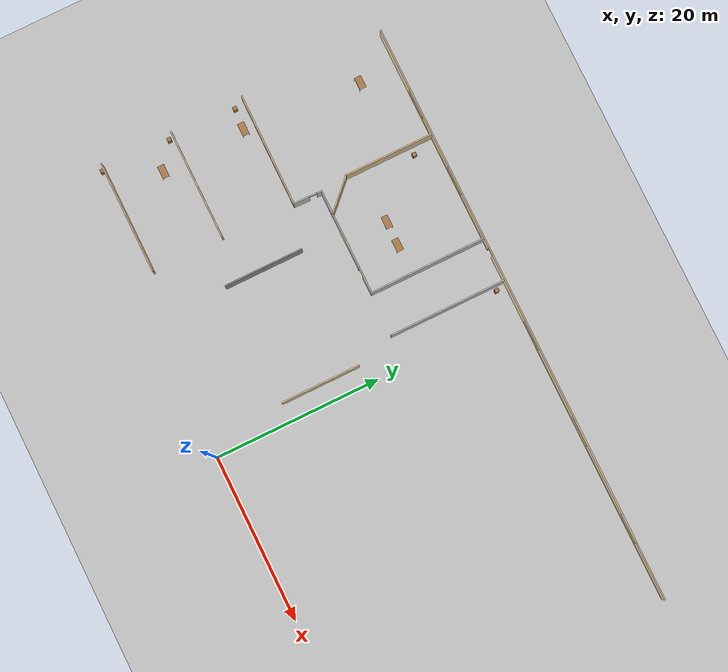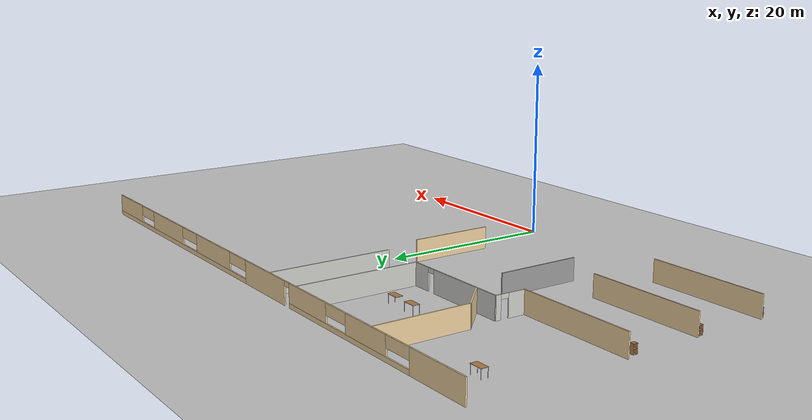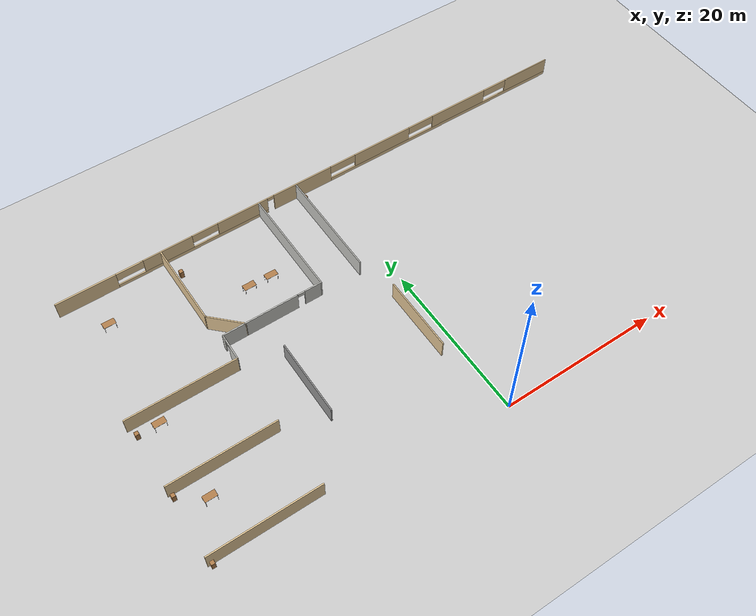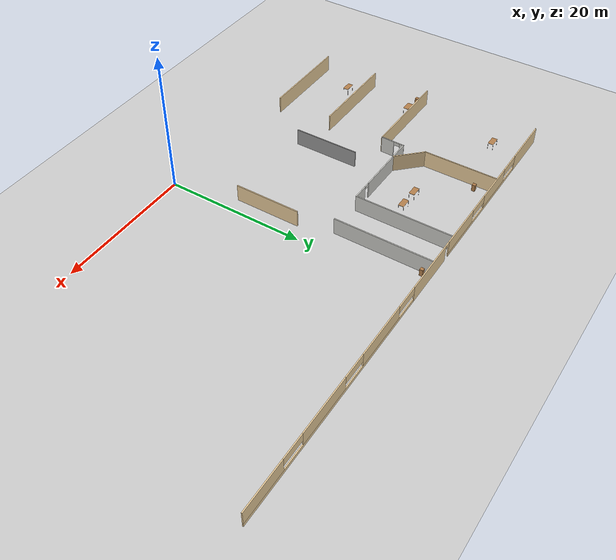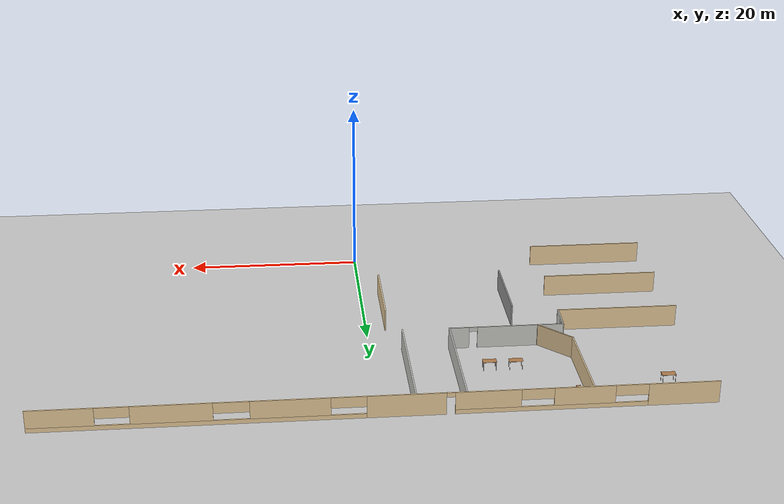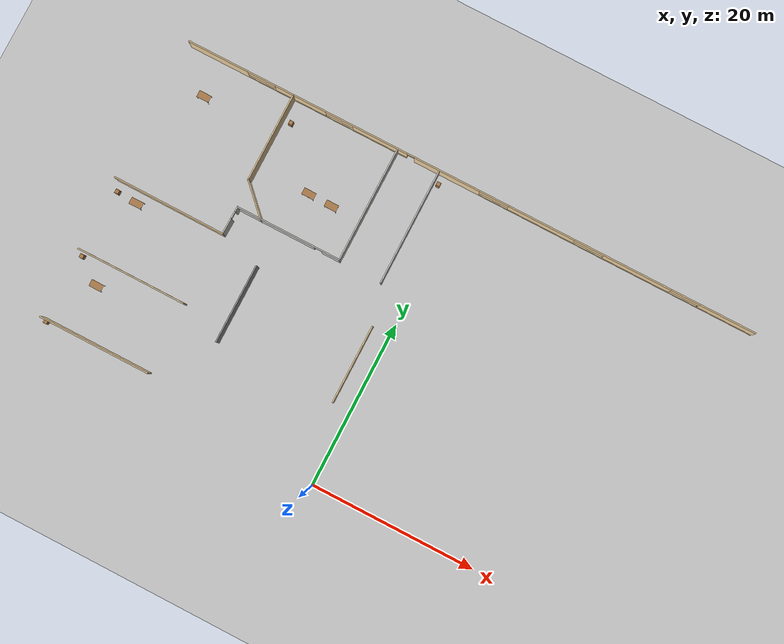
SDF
<sdf version="1.6">
 <world name="default">
  <model name="ground_plane">
   <static>1</static>
   <link name="link">
    <collision name="collision">
     <geometry><plane><normal>0 0 1</normal><size>100 100</size></plane></geometry>
     <surface><friction><ode><mu>100</mu><mu2>50</mu2></ode></friction></surface>
    </collision>
    <visual name="visual">
     <cast_shadows>0</cast_shadows>
     <geometry><plane><normal>0 0 1</normal><size>100 100</size></plane></geometry>
     <material>
      <script><uri>file://media/materials/scripts/gazebo.material</uri><name>Gazebo/Grey</name></script>
     </material>
    </visual>
   </link>
  </model>
  <model name="Building">
   <pose>0.1606 -0.442 0 0 -0 0</pose>
   <link name="Wall_19">
    <pose>0.058011 37.7805 0 0 -0 0</pose>
    <visual name="Wall_19_Visual_0">
     <pose>-31.6032 0 1.25 0 -0 0</pose>
     <geometry><box><size>7.48557 0.15 2.5</size></box></geometry>
     <material>
      <script><uri>file://media/materials/scripts/gazebo.material</uri><name>Gazebo/Grey</name></script>
      <ambient>0.921569 0.807843 0.615686 1</ambient>
     </material>
     <meta><layer>0</layer></meta>
    </visual>
    <collision name="Wall_19_Collision_0">
     <geometry><box><size>7.48557 0.15 2.5</size></box></geometry>
     <pose>-31.6032 0 1.25 0 -0 0</pose>
    </collision>
    <visual name="Wall_19_Visual_1">
     <pose>-2.88179 0 1.25 0 -0 0</pose>
     <geometry><box><size>8.13835 0.15 2.5</size></box></geometry>
     <material>
      <script><uri>file://media/materials/scripts/gazebo.material</uri><name>Gazebo/Grey</name></script>
      <ambient>0.921569 0.807843 0.615686 1</ambient>
     </material>
     <meta><layer>0</layer></meta>
    </visual>
    <collision name="Wall_19_Collision_1">
     <geometry><box><size>8.13835 0.15 2.5</size></box></geometry>
     <pose>-2.88179 0 1.25 0 -0 0</pose>
    </collision>
    <visual name="Wall_19_Visual_2">
     <pose>-17.8557 0 0.25 0 -0 0</pose>
     <geometry><box><size>20.0095 0.15 0.5</size></box></geometry>
     <material>
      <script><uri>file://media/materials/scripts/gazebo.material</uri><name>Gazebo/Grey</name></script>
      <ambient>0.921569 0.807843 0.615686 1</ambient>
     </material>
     <meta><layer>0</layer></meta>
    </visual>
    <collision name="Wall_19_Collision_2">
     <geometry><box><size>20.0095 0.15 0.5</size></box></geometry>
     <pose>-17.8557 0 0.25 0 -0 0</pose>
    </collision>
    <visual name="Wall_19_Visual_3">
     <pose>18.2667 0 0.25 0 -0 0</pose>
     <geometry><box><size>34.1586 0.15 0.5</size></box></geometry>
     <material>
      <script><uri>file://media/materials/scripts/gazebo.material</uri><name>Gazebo/Grey</name></script>
      <ambient>0.921569 0.807843 0.615686 1</ambient>
     </material>
     <meta><layer>0</layer></meta>
    </visual>
    <collision name="Wall_19_Collision_3">
     <geometry><box><size>34.1586 0.15 0.5</size></box></geometry>
     <pose>18.2667 0 0.25 0 -0 0</pose>
    </collision>
    <visual name="Wall_19_Visual_4">
     <pose>-21.2381 0 1.5 0 -0 0</pose>
     <geometry><box><size>6.36726 0.15 2</size></box></geometry>
     <material>
      <script><uri>file://media/materials/scripts/gazebo.material</uri><name>Gazebo/Grey</name></script>
      <ambient>0.921569 0.807843 0.615686 1</ambient>
     </material>
     <meta><layer>0</layer></meta>
    </visual>
    <collision name="Wall_19_Collision_4">
     <geometry><box><size>6.36726 0.15 2</size></box></geometry>
     <pose>-21.2381 0 1.5 0 -0 0</pose>
    </collision>
    <visual name="Wall_19_Visual_5">
     <pose>-11.2566 0 1.5 0 -0 0</pose>
     <geometry><box><size>6.81117 0.15 2</size></box></geometry>
     <material>
      <script><uri>file://media/materials/scripts/gazebo.material</uri><name>Gazebo/Grey</name></script>
      <ambient>0.921569 0.807843 0.615686 1</ambient>
     </material>
     <meta><layer>0</layer></meta>
    </visual>
    <collision name="Wall_19_Collision_5">
     <geometry><box><size>6.81117 0.15 2</size></box></geometry>
     <pose>-11.2566 0 1.5 0 -0 0</pose>
    </collision>
    <visual name="Wall_19_Visual_6">
     <pose>-11.2566 0 1.5 0 -0 0</pose>
     <geometry><box><size>6.81117 0.15 2</size></box></geometry>
     <material>
      <script><uri>file://media/materials/scripts/gazebo.material</uri><name>Gazebo/Grey</name></script>
      <ambient>0.921569 0.807843 0.615686 1</ambient>
     </material>
     <meta><layer>0</layer></meta>
    </visual>
    <collision name="Wall_19_Collision_6">
     <geometry><box><size>6.81117 0.15 2</size></box></geometry>
     <pose>-11.2566 0 1.5 0 -0 0</pose>
    </collision>
    <visual name="Wall_19_Visual_7">
     <pose>8.90248 0 1.5 0 -0 0</pose>
     <geometry><box><size>8.18717 0.15 2</size></box></geometry>
     <material>
      <script><uri>file://media/materials/scripts/gazebo.material</uri><name>Gazebo/Grey</name></script>
      <ambient>0.921569 0.807843 0.615686 1</ambient>
     </material>
     <meta><layer>0</layer></meta>
    </visual>
    <collision name="Wall_19_Collision_7">
     <geometry><box><size>8.18717 0.15 2</size></box></geometry>
     <pose>8.90248 0 1.5 0 -0 0</pose>
    </collision>
    <visual name="Wall_19_Visual_8">
     <pose>20.8176 0 1.5 0 -0 0</pose>
     <geometry><box><size>8.2936 0.15 2</size></box></geometry>
     <material>
      <script><uri>file://media/materials/scripts/gazebo.material</uri><name>Gazebo/Grey</name></script>
      <ambient>0.921569 0.807843 0.615686 1</ambient>
     </material>
     <meta><layer>0</layer></meta>
    </visual>
    <collision name="Wall_19_Collision_8">
     <geometry><box><size>8.2936 0.15 2</size></box></geometry>
     <pose>20.8176 0 1.5 0 -0 0</pose>
    </collision>
    <visual name="Wall_19_Visual_9">
     <pose>31.9127 0 1.5 0 -0 0</pose>
     <geometry><box><size>6.86653 0.15 2</size></box></geometry>
     <material>
      <script><uri>file://media/materials/scripts/gazebo.material</uri><name>Gazebo/Grey</name></script>
      <ambient>0.921569 0.807843 0.615686 1</ambient>
     </material>
     <meta><layer>0</layer></meta>
    </visual>
    <collision name="Wall_19_Collision_9">
     <geometry><box><size>6.86653 0.15 2</size></box></geometry>
     <pose>31.9127 0 1.5 0 -0 0</pose>
    </collision>
    <visual name="Wall_19_Visual_10">
     <pose>-26.1411 0 1.9 0 -0 0</pose>
     <geometry><box><size>3.43866 0.15 1.2</size></box></geometry>
     <material>
      <script><uri>file://media/materials/scripts/gazebo.material</uri><name>Gazebo/Grey</name></script>
      <ambient>0.921569 0.807843 0.615686 1</ambient>
     </material>
     <meta><layer>0</layer></meta>
    </visual>
    <collision name="Wall_19_Collision_10">
     <geometry><box><size>3.43866 0.15 1.2</size></box></geometry>
     <pose>-26.1411 0 1.9 0 -0 0</pose>
    </collision>
    <visual name="Wall_19_Visual_11">
     <pose>2.99814 0 1.9 0 -0 0</pose>
     <geometry><box><size>3.62151 0.15 1.2</size></box></geometry>
     <material>
      <script><uri>file://media/materials/scripts/gazebo.material</uri><name>Gazebo/Grey</name></script>
      <ambient>0.921569 0.807843 0.615686 1</ambient>
     </material>
     <meta><layer>0</layer></meta>
    </visual>
    <collision name="Wall_19_Collision_11">
     <geometry><box><size>3.62151 0.15 1.2</size></box></geometry>
     <pose>2.99814 0 1.9 0 -0 0</pose>
    </collision>
    <visual name="Wall_19_Visual_12">
     <pose>-16.3583 0 1.9 0 -0 0</pose>
     <geometry><box><size>3.39237 0.15 1.2</size></box></geometry>
     <material>
      <script><uri>file://media/materials/scripts/gazebo.material</uri><name>Gazebo/Grey</name></script>
      <ambient>0.921569 0.807843 0.615686 1</ambient>
     </material>
     <meta><layer>0</layer></meta>
    </visual>
    <collision name="Wall_19_Collision_12">
     <geometry><box><size>3.39237 0.15 1.2</size></box></geometry>
     <pose>-16.3583 0 1.9 0 -0 0</pose>
    </collision>
    <visual name="Wall_19_Visual_13">
     <pose>14.8334 0 1.9 0 -0 0</pose>
     <geometry><box><size>3.67475 0.15 1.2</size></box></geometry>
     <material>
      <script><uri>file://media/materials/scripts/gazebo.material</uri><name>Gazebo/Grey</name></script>
      <ambient>0.921569 0.807843 0.615686 1</ambient>
     </material>
     <meta><layer>0</layer></meta>
    </visual>
    <collision name="Wall_19_Collision_13">
     <geometry><box><size>3.67475 0.15 1.2</size></box></geometry>
     <pose>14.8334 0 1.9 0 -0 0</pose>
    </collision>
    <visual name="Wall_19_Visual_14">
     <pose>26.7219 0 1.9 0 -0 0</pose>
     <geometry><box><size>3.51504 0.15 1.2</size></box></geometry>
     <material>
      <script><uri>file://media/materials/scripts/gazebo.material</uri><name>Gazebo/Grey</name></script>
      <ambient>0.921569 0.807843 0.615686 1</ambient>
     </material>
     <meta><layer>0</layer></meta>
    </visual>
    <collision name="Wall_19_Collision_14">
     <geometry><box><size>3.51504 0.15 1.2</size></box></geometry>
     <pose>26.7219 0 1.9 0 -0 0</pose>
    </collision>
    <visual name="Wall_19_Visual_15">
     <pose>-7.40097 0 2.25 0 -0 0</pose>
     <geometry><box><size>0.9 0.15 0.5</size></box></geometry>
     <material>
      <script><uri>file://media/materials/scripts/gazebo.material</uri><name>Gazebo/Grey</name></script>
      <ambient>0.921569 0.807843 0.615686 1</ambient>
     </material>
     <meta><layer>0</layer></meta>
    </visual>
    <collision name="Wall_19_Collision_15">
     <geometry><box><size>0.9 0.15 0.5</size></box></geometry>
     <pose>-7.40097 0 2.25 0 -0 0</pose>
    </collision>
    <visual name="Wall_19_Visual_16">
     <pose>-7.40097 0 2.25 0 -0 0</pose>
     <geometry><box><size>0.9 0.15 0.5</size></box></geometry>
     <material>
      <script><uri>file://media/materials/scripts/gazebo.material</uri><name>Gazebo/Grey</name></script>
      <ambient>0.921569 0.807843 0.615686 1</ambient>
     </material>
     <meta><layer>0</layer></meta>
    </visual>
    <collision name="Wall_19_Collision_16">
     <geometry><box><size>0.9 0.15 0.5</size></box></geometry>
     <pose>-7.40097 0 2.25 0 -0 0</pose>
    </collision>
   </link>
   <link name="Wall_21">
    <collision name="Wall_21_Collision">
     <geometry><box><size>10.75 0.15 2.5</size></box></geometry>
     <pose>0 0 1.25 0 -0 0</pose>
    </collision>
    <visual name="Wall_21_Visual">
     <pose>0 0 1.25 0 -0 0</pose>
     <geometry><box><size>10.75 0.15 2.5</size></box></geometry>
     <material>
      <script><uri>file://media/materials/scripts/gazebo.material</uri><name>Gazebo/Grey</name></script>
      <ambient>0.921569 0.807843 0.615686 1</ambient>
     </material>
     <meta><layer>0</layer></meta>
    </visual>
    <pose>-22.0834 32.3763 0 0 0 -1.5708</pose>
   </link>
   <link name="Wall_22">
    <collision name="Wall_22_Collision">
     <geometry><box><size>4.75 0.15 2.5</size></box></geometry>
     <pose>0 0 1.25 0 -0 0</pose>
    </collision>
    <visual name="Wall_22_Visual">
     <pose>0 0 1.25 0 -0 0</pose>
     <geometry><box><size>4.75 0.15 2.5</size></box></geometry>
     <material>
      <script><uri>file://media/materials/scripts/gazebo.material</uri><name>Gazebo/Grey</name></script>
      <ambient>0.921569 0.807843 0.615686 1</ambient>
     </material>
     <meta><layer>0</layer></meta>
    </visual>
    <pose>-20.457 25.45 0 0 0 -0.785398</pose>
   </link>
   <link name="Wall_23">
    <pose>-13.9057 23.8237 0 0 -0 0</pose>
    <visual name="Wall_23_Visual_0">
     <pose>-1.59265 0 1.25 0 -0 0</pose>
     <geometry><box><size>6.8147 0.15 2.5</size></box></geometry>
     <material>
      <script><uri>file://media/materials/scripts/gazebo.material</uri><name>Gazebo/CeilingTiled</name></script>
      <ambient>1 1 1 1</ambient>
     </material>
     <meta><layer>0</layer></meta>
    </visual>
    <collision name="Wall_23_Collision_0">
     <geometry><box><size>6.8147 0.15 2.5</size></box></geometry>
     <pose>-1.59265 0 1.25 0 -0 0</pose>
    </collision>
    <visual name="Wall_23_Visual_1">
     <pose>3.85735 0 1.25 0 -0 0</pose>
     <geometry><box><size>2.2853 0.15 2.5</size></box></geometry>
     <material>
      <script><uri>file://media/materials/scripts/gazebo.material</uri><name>Gazebo/CeilingTiled</name></script>
      <ambient>1 1 1 1</ambient>
     </material>
     <meta><layer>0</layer></meta>
    </visual>
    <collision name="Wall_23_Collision_1">
     <geometry><box><size>2.2853 0.15 2.5</size></box></geometry>
     <pose>3.85735 0 1.25 0 -0 0</pose>
    </collision>
    <visual name="Wall_23_Visual_2">
     <pose>2.2647 0 2.25 0 -0 0</pose>
     <geometry><box><size>0.9 0.15 0.5</size></box></geometry>
     <material>
      <script><uri>file://media/materials/scripts/gazebo.material</uri><name>Gazebo/CeilingTiled</name></script>
      <ambient>1 1 1 1</ambient>
     </material>
     <meta><layer>0</layer></meta>
    </visual>
    <collision name="Wall_23_Collision_2">
     <geometry><box><size>0.9 0.15 0.5</size></box></geometry>
     <pose>2.2647 0 2.25 0 -0 0</pose>
    </collision>
   </link>
   <link name="Wall_24">
    <collision name="Wall_24_Collision">
     <geometry><box><size>14 0.15 2.5</size></box></geometry>
     <pose>0 0 1.25 0 -0 0</pose>
    </collision>
    <visual name="Wall_24_Visual">
     <pose>0 0 1.25 0 -0 0</pose>
     <geometry><box><size>14 0.15 2.5</size></box></geometry>
     <material>
      <script><uri>file://media/materials/scripts/gazebo.material</uri><name>Gazebo/CeilingTiled</name></script>
      <ambient>1 1 1 1</ambient>
     </material>
     <meta><layer>0</layer></meta>
    </visual>
    <pose>-8.9807 30.7487 0 0 -0 1.5708</pose>
   </link>
   <link name="Wall_26">
    <collision name="Wall_26_Collision">
     <geometry><box><size>14 0.15 2.5</size></box></geometry>
     <pose>0 0 1.25 0 -0 0</pose>
    </collision>
    <visual name="Wall_26_Visual">
     <pose>0 0 1.25 0 -0 0</pose>
     <geometry><box><size>14 0.15 2.5</size></box></geometry>
     <material>
      <script><uri>file://media/materials/scripts/gazebo.material</uri><name>Gazebo/CeilingTiled</name></script>
      <ambient>1 1 1 1</ambient>
     </material>
     <meta><layer>0</layer></meta>
    </visual>
    <pose>-3.76339 30.6713 0 0 0 -1.5708</pose>
   </link>
   <link name="Wall_50">
    <collision name="Wall_50_Collision">
     <geometry><box><size>13.6584 0.15 2.5</size></box></geometry>
     <pose>0 0 1.25 0 -0 0</pose>
    </collision>
    <visual name="Wall_50_Visual">
     <pose>0 0 1.25 0 -0 0</pose>
     <geometry><box><size>13.6584 0.15 2.5</size></box></geometry>
     <material>
      <script><uri>file://media/materials/scripts/gazebo.material</uri><name>Gazebo/Grey</name></script>
      <ambient>0.921569 0.807843 0.615686 1</ambient>
     </material>
     <meta><layer>0</layer></meta>
    </visual>
    <pose>-28.5321 20.4567 0 0 0 -0.004664</pose>
   </link>
   <link name="Wall_52">
    <collision name="Wall_52_Collision">
     <geometry><box><size>13.5 0.15 2.5</size></box></geometry>
     <pose>0 0 1.25 0 -0 0</pose>
    </collision>
    <visual name="Wall_52_Visual">
     <pose>0 0 1.25 0 -0 0</pose>
     <geometry><box><size>13.5 0.15 2.5</size></box></geometry>
     <material>
      <script><uri>file://media/materials/scripts/gazebo.material</uri><name>Gazebo/Grey</name></script>
      <ambient>0.921569 0.807843 0.615686 1</ambient>
     </material>
     <meta><layer>0</layer></meta>
    </visual>
    <pose>-28.5455 3.06639 0 0 -0 0</pose>
   </link>
   <link name="Wall_7">
    <collision name="Wall_7_Collision">
     <geometry><box><size>13.25 0.15 2.5</size></box></geometry>
     <pose>0 0 1.25 0 -0 0</pose>
    </collision>
    <visual name="Wall_7_Visual">
     <pose>0 0 1.25 0 -0 0</pose>
     <geometry><box><size>13.25 0.15 2.5</size></box></geometry>
     <material>
      <script><uri>file://media/materials/scripts/gazebo.material</uri><name>Gazebo/Grey</name></script>
      <ambient>0.921569 0.807843 0.615686 1</ambient>
     </material>
     <meta><layer>0</layer></meta>
    </visual>
    <pose>-28.5436 11.6262 0 0 -0 0</pose>
   </link>
   <link name="Wall_75">
    <collision name="Wall_75_Collision">
     <geometry><box><size>9.5 0.15 2.5</size></box></geometry>
     <pose>0 0 1.25 0 -0 0</pose>
    </collision>
    <visual name="Wall_75_Visual">
     <pose>0 0 1.25 0 -0 0</pose>
     <geometry><box><size>9.5 0.15 2.5</size></box></geometry>
     <material>
      <script><uri>file://media/materials/scripts/gazebo.material</uri><name>Gazebo/Grey</name></script>
      <ambient>1 1 1 1</ambient>
     </material>
     <meta><layer>0</layer></meta>
    </visual>
    <pose>-16.7766 14.2887 0 0 -0 1.5708</pose>
   </link>
   <link name="Wall_80">
    <collision name="Wall_80_Collision">
     <geometry><box><size>9.5 0.15 2.5</size></box></geometry>
     <pose>0 0 1.25 0 -0 0</pose>
    </collision>
    <visual name="Wall_80_Visual">
     <pose>0 0 1.25 0 -0 0</pose>
     <geometry><box><size>9.5 0.15 2.5</size></box></geometry>
     <material>
      <script><uri>file://media/materials/scripts/gazebo.material</uri><name>Gazebo/Grey</name></script>
      <ambient>0.921569 0.807843 0.615686 1</ambient>
     </material>
     <meta><layer>0</layer></meta>
    </visual>
    <pose>-2.33759 14.303 0 0 0 -1.5708</pose>
   </link>
   <link name="Wall_82">
    <collision name="Wall_82_Collision">
     <geometry><box><size>3 0.15 2.5</size></box></geometry>
     <pose>0 0 1.25 0 -0 0</pose>
    </collision>
    <visual name="Wall_82_Visual">
     <pose>0 0 1.25 0 -0 0</pose>
     <geometry><box><size>3 0.15 2.5</size></box></geometry>
     <material>
      <script><uri>file://media/materials/scripts/gazebo.material</uri><name>Gazebo/CeilingTiled</name></script>
      <ambient>1 1 1 1</ambient>
     </material>
     <meta><layer>0</layer></meta>
    </visual>
    <pose>-20.2557 23.8237 0 0 -0 3.14159</pose>
   </link>
   <link name="Wall_83">
    <pose>-21.7293 22.1244 0 0 0 -1.59942</pose>
    <visual name="Wall_83_Visual_0">
     <pose>-1.44711 0 1.25 0 -0 0</pose>
     <geometry><box><size>0.655603 0.15 2.5</size></box></geometry>
     <material>
      <script><uri>file://media/materials/scripts/gazebo.material</uri><name>Gazebo/CeilingTiled</name></script>
      <ambient>1 1 1 1</ambient>
     </material>
     <meta><layer>0</layer></meta>
    </visual>
    <collision name="Wall_83_Collision_0">
     <geometry><box><size>0.655603 0.15 2.5</size></box></geometry>
     <pose>-1.44711 0 1.25 0 -0 0</pose>
    </collision>
    <visual name="Wall_83_Visual_1">
     <pose>0.777802 0 1.25 0 -0 0</pose>
     <geometry><box><size>1.99421 0.15 2.5</size></box></geometry>
     <material>
      <script><uri>file://media/materials/scripts/gazebo.material</uri><name>Gazebo/CeilingTiled</name></script>
      <ambient>1 1 1 1</ambient>
     </material>
     <meta><layer>0</layer></meta>
    </visual>
    <collision name="Wall_83_Collision_1">
     <geometry><box><size>1.99421 0.15 2.5</size></box></geometry>
     <pose>0.777802 0 1.25 0 -0 0</pose>
    </collision>
    <visual name="Wall_83_Visual_2">
     <pose>-0.669303 0 2.25 0 -0 0</pose>
     <geometry><box><size>0.9 0.15 0.5</size></box></geometry>
     <material>
      <script><uri>file://media/materials/scripts/gazebo.material</uri><name>Gazebo/CeilingTiled</name></script>
      <ambient>1 1 1 1</ambient>
     </material>
     <meta><layer>0</layer></meta>
    </visual>
    <collision name="Wall_83_Collision_2">
     <geometry><box><size>0.9 0.15 0.5</size></box></geometry>
     <pose>-0.669303 0 2.25 0 -0 0</pose>
    </collision>
   </link>
   <static>1</static>
  </model>
  <model name="table_clone_2">
   <static>1</static>
   <link name="link">
    <collision name="surface">
     <pose>0 0 1 0 -0 0</pose>
     <geometry><box><size>1.5 0.8 0.03</size></box></geometry>
     <surface><friction><ode><mu>0.6</mu><mu2>0.6</mu2></ode></friction></surface>
    </collision>
    <visual name="visual1">
     <pose>0 0 1 0 -0 0</pose>
     <geometry><box><size>1.5 0.8 0.03</size></box></geometry>
     <material>
      <script><uri>file://media/materials/scripts/gazebo.material</uri><name>Gazebo/Wood</name></script>
     </material>
    </visual>
    <collision name="front_left_leg">
     <pose>0.68 0.38 0.5 0 -0 0</pose>
     <geometry><cylinder><radius>0.02</radius><length>1</length></cylinder></geometry>
    </collision>
    <visual name="front_left_leg">
     <pose>0.68 0.38 0.5 0 -0 0</pose>
     <geometry><cylinder><radius>0.02</radius><length>1</length></cylinder></geometry>
     <material>
      <script><uri>file://media/materials/scripts/gazebo.material</uri><name>Gazebo/Grey</name></script>
     </material>
    </visual>
    <collision name="front_right_leg">
     <pose>0.68 -0.38 0.5 0 -0 0</pose>
     <geometry><cylinder><radius>0.02</radius><length>1</length></cylinder></geometry>
    </collision>
    <visual name="front_right_leg">
     <pose>0.68 -0.38 0.5 0 -0 0</pose>
     <geometry><cylinder><radius>0.02</radius><length>1</length></cylinder></geometry>
     <material>
      <script><uri>file://media/materials/scripts/gazebo.material</uri><name>Gazebo/Grey</name></script>
     </material>
    </visual>
    <collision name="back_right_leg">
     <pose>-0.68 -0.38 0.5 0 -0 0</pose>
     <geometry><cylinder><radius>0.02</radius><length>1</length></cylinder></geometry>
    </collision>
    <visual name="back_right_leg">
     <pose>-0.68 -0.38 0.5 0 -0 0</pose>
     <geometry><cylinder><radius>0.02</radius><length>1</length></cylinder></geometry>
     <material>
      <script><uri>file://media/materials/scripts/gazebo.material</uri><name>Gazebo/Grey</name></script>
     </material>
    </visual>
    <collision name="back_left_leg">
     <pose>-0.68 0.38 0.5 0 -0 0</pose>
     <geometry><cylinder><radius>0.02</radius><length>1</length></cylinder></geometry>
    </collision>
    <visual name="back_left_leg">
     <pose>-0.68 0.38 0.5 0 -0 0</pose>
     <geometry><cylinder><radius>0.02</radius><length>1</length></cylinder></geometry>
     <material>
      <script><uri>file://media/materials/scripts/gazebo.material</uri><name>Gazebo/Grey</name></script>
     </material>
    </visual>
   </link>
   <pose>-12.5334 28.4433 0 0 -0 0</pose>
  </model>
  <model name="table_clone_3">
   <static>1</static>
   <link name="link">
    <collision name="surface">
     <pose>0 0 1 0 -0 0</pose>
     <geometry><box><size>1.5 0.8 0.03</size></box></geometry>
     <surface><friction><ode><mu>0.6</mu><mu2>0.6</mu2></ode></friction></surface>
    </collision>
    <visual name="visual1">
     <pose>0 0 1 0 -0 0</pose>
     <geometry><box><size>1.5 0.8 0.03</size></box></geometry>
     <material>
      <script><uri>file://media/materials/scripts/gazebo.material</uri><name>Gazebo/Wood</name></script>
     </material>
    </visual>
    <collision name="front_left_leg">
     <pose>0.68 0.38 0.5 0 -0 0</pose>
     <geometry><cylinder><radius>0.02</radius><length>1</length></cylinder></geometry>
    </collision>
    <visual name="front_left_leg">
     <pose>0.68 0.38 0.5 0 -0 0</pose>
     <geometry><cylinder><radius>0.02</radius><length>1</length></cylinder></geometry>
     <material>
      <script><uri>file://media/materials/scripts/gazebo.material</uri><name>Gazebo/Grey</name></script>
     </material>
    </visual>
    <collision name="front_right_leg">
     <pose>0.68 -0.38 0.5 0 -0 0</pose>
     <geometry><cylinder><radius>0.02</radius><length>1</length></cylinder></geometry>
    </collision>
    <visual name="front_right_leg">
     <pose>0.68 -0.38 0.5 0 -0 0</pose>
     <geometry><cylinder><radius>0.02</radius><length>1</length></cylinder></geometry>
     <material>
      <script><uri>file://media/materials/scripts/gazebo.material</uri><name>Gazebo/Grey</name></script>
     </material>
    </visual>
    <collision name="back_right_leg">
     <pose>-0.68 -0.38 0.5 0 -0 0</pose>
     <geometry><cylinder><radius>0.02</radius><length>1</length></cylinder></geometry>
    </collision>
    <visual name="back_right_leg">
     <pose>-0.68 -0.38 0.5 0 -0 0</pose>
     <geometry><cylinder><radius>0.02</radius><length>1</length></cylinder></geometry>
     <material>
      <script><uri>file://media/materials/scripts/gazebo.material</uri><name>Gazebo/Grey</name></script>
     </material>
    </visual>
    <collision name="back_left_leg">
     <pose>-0.68 0.38 0.5 0 -0 0</pose>
     <geometry><cylinder><radius>0.02</radius><length>1</length></cylinder></geometry>
    </collision>
    <visual name="back_left_leg">
     <pose>-0.68 0.38 0.5 0 -0 0</pose>
     <geometry><cylinder><radius>0.02</radius><length>1</length></cylinder></geometry>
     <material>
      <script><uri>file://media/materials/scripts/gazebo.material</uri><name>Gazebo/Grey</name></script>
     </material>
    </visual>
   </link>
   <pose>-15.3898 28.4969 0 0 -0 0</pose>
  </model>
  <model name="table_clone_13">
   <static>1</static>
   <link name="link">
    <collision name="surface">
     <pose>0 0 1 0 -0 0</pose>
     <geometry><box><size>1.5 0.8 0.03</size></box></geometry>
     <surface><friction><ode><mu>0.6</mu><mu2>0.6</mu2></ode></friction></surface>
    </collision>
    <visual name="visual1">
     <pose>0 0 1 0 -0 0</pose>
     <geometry><box><size>1.5 0.8 0.03</size></box></geometry>
     <material>
      <script><uri>file://media/materials/scripts/gazebo.material</uri><name>Gazebo/Wood</name></script>
     </material>
    </visual>
    <collision name="front_left_leg">
     <pose>0.68 0.38 0.5 0 -0 0</pose>
     <geometry><cylinder><radius>0.02</radius><length>1</length></cylinder></geometry>
    </collision>
    <visual name="front_left_leg">
     <pose>0.68 0.38 0.5 0 -0 0</pose>
     <geometry><cylinder><radius>0.02</radius><length>1</length></cylinder></geometry>
     <material>
      <script><uri>file://media/materials/scripts/gazebo.material</uri><name>Gazebo/Grey</name></script>
     </material>
    </visual>
    <collision name="front_right_leg">
     <pose>0.68 -0.38 0.5 0 -0 0</pose>
     <geometry><cylinder><radius>0.02</radius><length>1</length></cylinder></geometry>
    </collision>
    <visual name="front_right_leg">
     <pose>0.68 -0.38 0.5 0 -0 0</pose>
     <geometry><cylinder><radius>0.02</radius><length>1</length></cylinder></geometry>
     <material>
      <script><uri>file://media/materials/scripts/gazebo.material</uri><name>Gazebo/Grey</name></script>
     </material>
    </visual>
    <collision name="back_right_leg">
     <pose>-0.68 -0.38 0.5 0 -0 0</pose>
     <geometry><cylinder><radius>0.02</radius><length>1</length></cylinder></geometry>
    </collision>
    <visual name="back_right_leg">
     <pose>-0.68 -0.38 0.5 0 -0 0</pose>
     <geometry><cylinder><radius>0.02</radius><length>1</length></cylinder></geometry>
     <material>
      <script><uri>file://media/materials/scripts/gazebo.material</uri><name>Gazebo/Grey</name></script>
     </material>
    </visual>
    <collision name="back_left_leg">
     <pose>-0.68 0.38 0.5 0 -0 0</pose>
     <geometry><cylinder><radius>0.02</radius><length>1</length></cylinder></geometry>
    </collision>
    <visual name="back_left_leg">
     <pose>-0.68 0.38 0.5 0 -0 0</pose>
     <geometry><cylinder><radius>0.02</radius><length>1</length></cylinder></geometry>
     <material>
      <script><uri>file://media/materials/scripts/gazebo.material</uri><name>Gazebo/Grey</name></script>
     </material>
    </visual>
   </link>
   <pose>-31.5604 8.45874 0 0 -0 0</pose>
  </model>
  <model name="table_clone_14">
   <static>1</static>
   <link name="link">
    <collision name="surface">
     <pose>0 0 1 0 -0 0</pose>
     <geometry><box><size>1.5 0.8 0.03</size></box></geometry>
     <surface><friction><ode><mu>0.6</mu><mu2>0.6</mu2></ode></friction></surface>
    </collision>
    <visual name="visual1">
     <pose>0 0 1 0 -0 0</pose>
     <geometry><box><size>1.5 0.8 0.03</size></box></geometry>
     <material>
      <script><uri>file://media/materials/scripts/gazebo.material</uri><name>Gazebo/Wood</name></script>
     </material>
    </visual>
    <collision name="front_left_leg">
     <pose>0.68 0.38 0.5 0 -0 0</pose>
     <geometry><cylinder><radius>0.02</radius><length>1</length></cylinder></geometry>
    </collision>
    <visual name="front_left_leg">
     <pose>0.68 0.38 0.5 0 -0 0</pose>
     <geometry><cylinder><radius>0.02</radius><length>1</length></cylinder></geometry>
     <material>
      <script><uri>file://media/materials/scripts/gazebo.material</uri><name>Gazebo/Grey</name></script>
     </material>
    </visual>
    <collision name="front_right_leg">
     <pose>0.68 -0.38 0.5 0 -0 0</pose>
     <geometry><cylinder><radius>0.02</radius><length>1</length></cylinder></geometry>
    </collision>
    <visual name="front_right_leg">
     <pose>0.68 -0.38 0.5 0 -0 0</pose>
     <geometry><cylinder><radius>0.02</radius><length>1</length></cylinder></geometry>
     <material>
      <script><uri>file://media/materials/scripts/gazebo.material</uri><name>Gazebo/Grey</name></script>
     </material>
    </visual>
    <collision name="back_right_leg">
     <pose>-0.68 -0.38 0.5 0 -0 0</pose>
     <geometry><cylinder><radius>0.02</radius><length>1</length></cylinder></geometry>
    </collision>
    <visual name="back_right_leg">
     <pose>-0.68 -0.38 0.5 0 -0 0</pose>
     <geometry><cylinder><radius>0.02</radius><length>1</length></cylinder></geometry>
     <material>
      <script><uri>file://media/materials/scripts/gazebo.material</uri><name>Gazebo/Grey</name></script>
     </material>
    </visual>
    <collision name="back_left_leg">
     <pose>-0.68 0.38 0.5 0 -0 0</pose>
     <geometry><cylinder><radius>0.02</radius><length>1</length></cylinder></geometry>
    </collision>
    <visual name="back_left_leg">
     <pose>-0.68 0.38 0.5 0 -0 0</pose>
     <geometry><cylinder><radius>0.02</radius><length>1</length></cylinder></geometry>
     <material>
      <script><uri>file://media/materials/scripts/gazebo.material</uri><name>Gazebo/Grey</name></script>
     </material>
    </visual>
   </link>
   <pose>-31.9981 18.64 0 0 -0 0</pose>
  </model>
  <model name="table_clone_15">
   <static>1</static>
   <link name="link">
    <collision name="surface">
     <pose>0 0 1 0 -0 0</pose>
     <geometry><box><size>1.5 0.8 0.03</size></box></geometry>
     <surface><friction><ode><mu>0.6</mu><mu2>0.6</mu2></ode></friction></surface>
    </collision>
    <visual name="visual1">
     <pose>0 0 1 0 -0 0</pose>
     <geometry><box><size>1.5 0.8 0.03</size></box></geometry>
     <material>
      <script><uri>file://media/materials/scripts/gazebo.material</uri><name>Gazebo/Wood</name></script>
     </material>
    </visual>
    <collision name="front_left_leg">
     <pose>0.68 0.38 0.5 0 -0 0</pose>
     <geometry><cylinder><radius>0.02</radius><length>1</length></cylinder></geometry>
    </collision>
    <visual name="front_left_leg">
     <pose>0.68 0.38 0.5 0 -0 0</pose>
     <geometry><cylinder><radius>0.02</radius><length>1</length></cylinder></geometry>
     <material>
      <script><uri>file://media/materials/scripts/gazebo.material</uri><name>Gazebo/Grey</name></script>
     </material>
    </visual>
    <collision name="front_right_leg">
     <pose>0.68 -0.38 0.5 0 -0 0</pose>
     <geometry><cylinder><radius>0.02</radius><length>1</length></cylinder></geometry>
    </collision>
    <visual name="front_right_leg">
     <pose>0.68 -0.38 0.5 0 -0 0</pose>
     <geometry><cylinder><radius>0.02</radius><length>1</length></cylinder></geometry>
     <material>
      <script><uri>file://media/materials/scripts/gazebo.material</uri><name>Gazebo/Grey</name></script>
     </material>
    </visual>
    <collision name="back_right_leg">
     <pose>-0.68 -0.38 0.5 0 -0 0</pose>
     <geometry><cylinder><radius>0.02</radius><length>1</length></cylinder></geometry>
    </collision>
    <visual name="back_right_leg">
     <pose>-0.68 -0.38 0.5 0 -0 0</pose>
     <geometry><cylinder><radius>0.02</radius><length>1</length></cylinder></geometry>
     <material>
      <script><uri>file://media/materials/scripts/gazebo.material</uri><name>Gazebo/Grey</name></script>
     </material>
    </visual>
    <collision name="back_left_leg">
     <pose>-0.68 0.38 0.5 0 -0 0</pose>
     <geometry><cylinder><radius>0.02</radius><length>1</length></cylinder></geometry>
    </collision>
    <visual name="back_left_leg">
     <pose>-0.68 0.38 0.5 0 -0 0</pose>
     <geometry><cylinder><radius>0.02</radius><length>1</length></cylinder></geometry>
     <material>
      <script><uri>file://media/materials/scripts/gazebo.material</uri><name>Gazebo/Grey</name></script>
     </material>
    </visual>
   </link>
   <pose>-30.9962 32.7938 0 0 -0 0</pose>
  </model>
  <model name="cabinet_clone_0">
   <static>1</static>
   <link name="cabinet_bottom_plate">
    <inertial>
     <pose>0 0 -1 0 -0 0</pose>
     <inertia><ixx>2.05</ixx><ixy>0</ixy><ixz>0</ixz><iyy>2.05</iyy><iyz>0</iyz><izz>2.05</izz></inertia>
     <mass>25</mass>
    </inertial>
    <collision name="cabinet_bottom_plate_geom">
     <pose>0 0 0.01 0 -0 0</pose>
     <geometry><box><size>0.45 0.45 0.02</size></box></geometry>
    </collision>
    <visual name="cabinet_bottom_plate_geom_visual">
     <pose>0 0 0.01 0 -0 0</pose>
     <geometry><box><size>0.45 0.45 0.02</size></box></geometry>
     <material>
      <script><uri>file://media/materials/scripts/gazebo.material</uri><name>Gazebo/Wood</name></script>
     </material>
    </visual>
    <collision name="cabinet_bottom_plate_geom_cabinet_back_plate">
     <pose>0.235 0 0.51 0 -0 0</pose>
     <geometry><box><size>0.02 0.45 1.02</size></box></geometry>
    </collision>
    <visual name="cabinet_bottom_plate_geom_cabinet_back_plate_visual">
     <pose>0.235 0 0.51 0 -0 0</pose>
     <geometry><box><size>0.02 0.45 1.02</size></box></geometry>
     <material>
      <script><uri>file://media/materials/scripts/gazebo.material</uri><name>Gazebo/Wood</name></script>
     </material>
    </visual>
    <collision name="cabinet_bottom_plate_geom_cabinet_left_plate">
     <pose>0 0.235 0.51 0 -0 0</pose>
     <geometry><box><size>0.45 0.02 1.02</size></box></geometry>
    </collision>
    <visual name="cabinet_bottom_plate_geom_cabinet_left_plate_visual">
     <pose>0 0.235 0.51 0 -0 0</pose>
     <geometry><box><size>0.45 0.02 1.02</size></box></geometry>
     <material>
      <script><uri>file://media/materials/scripts/gazebo.material</uri><name>Gazebo/Wood</name></script>
     </material>
    </visual>
    <collision name="cabinet_bottom_plate_geom_cabinet_middle_plate">
     <pose>0 0 0.51 0 -0 0</pose>
     <geometry><box><size>0.45 0.45 0.02</size></box></geometry>
    </collision>
    <visual name="cabinet_bottom_plate_geom_cabinet_middle_plate_visual">
     <pose>0 0 0.51 0 -0 0</pose>
     <geometry><box><size>0.45 0.45 0.02</size></box></geometry>
     <material>
      <script><uri>file://media/materials/scripts/gazebo.material</uri><name>Gazebo/Wood</name></script>
     </material>
    </visual>
    <collision name="cabinet_bottom_plate_geom_cabinet_right_plate">
     <pose>0 -0.235 0.51 0 -0 0</pose>
     <geometry><box><size>0.45 0.02 1.02</size></box></geometry>
    </collision>
    <visual name="cabinet_bottom_plate_geom_cabinet_right_plate_visual">
     <pose>0 -0.235 0.51 0 -0 0</pose>
     <geometry><box><size>0.45 0.02 1.02</size></box></geometry>
     <material>
      <script><uri>file://media/materials/scripts/gazebo.material</uri><name>Gazebo/Wood</name></script>
     </material>
    </visual>
    <collision name="cabinet_bottom_plate_geom_cabinet_top_plate">
     <pose>0 0 1.01 0 -0 0</pose>
     <geometry><box><size>0.45 0.45 0.02</size></box></geometry>
    </collision>
    <visual name="cabinet_bottom_plate_geom_cabinet_top_plate_visual">
     <pose>0 0 1.01 0 -0 0</pose>
     <geometry><box><size>0.45 0.45 0.02</size></box></geometry>
     <material>
      <script><uri>file://media/materials/scripts/gazebo.material</uri><name>Gazebo/Wood</name></script>
     </material>
    </visual>
   </link>
   <pose>-34.6575 2.33973 0 0 -0 0</pose>
  </model>
  <model name="cabinet_clone_1">
   <static>1</static>
   <link name="cabinet_bottom_plate">
    <inertial>
     <pose>0 0 -1 0 -0 0</pose>
     <inertia><ixx>2.05</ixx><ixy>0</ixy><ixz>0</ixz><iyy>2.05</iyy><iyz>0</iyz><izz>2.05</izz></inertia>
     <mass>25</mass>
    </inertial>
    <collision name="cabinet_bottom_plate_geom">
     <pose>0 0 0.01 0 -0 0</pose>
     <geometry><box><size>0.45 0.45 0.02</size></box></geometry>
    </collision>
    <visual name="cabinet_bottom_plate_geom_visual">
     <pose>0 0 0.01 0 -0 0</pose>
     <geometry><box><size>0.45 0.45 0.02</size></box></geometry>
     <material>
      <script><uri>file://media/materials/scripts/gazebo.material</uri><name>Gazebo/Wood</name></script>
     </material>
    </visual>
    <collision name="cabinet_bottom_plate_geom_cabinet_back_plate">
     <pose>0.235 0 0.51 0 -0 0</pose>
     <geometry><box><size>0.02 0.45 1.02</size></box></geometry>
    </collision>
    <visual name="cabinet_bottom_plate_geom_cabinet_back_plate_visual">
     <pose>0.235 0 0.51 0 -0 0</pose>
     <geometry><box><size>0.02 0.45 1.02</size></box></geometry>
     <material>
      <script><uri>file://media/materials/scripts/gazebo.material</uri><name>Gazebo/Wood</name></script>
     </material>
    </visual>
    <collision name="cabinet_bottom_plate_geom_cabinet_left_plate">
     <pose>0 0.235 0.51 0 -0 0</pose>
     <geometry><box><size>0.45 0.02 1.02</size></box></geometry>
    </collision>
    <visual name="cabinet_bottom_plate_geom_cabinet_left_plate_visual">
     <pose>0 0.235 0.51 0 -0 0</pose>
     <geometry><box><size>0.45 0.02 1.02</size></box></geometry>
     <material>
      <script><uri>file://media/materials/scripts/gazebo.material</uri><name>Gazebo/Wood</name></script>
     </material>
    </visual>
    <collision name="cabinet_bottom_plate_geom_cabinet_middle_plate">
     <pose>0 0 0.51 0 -0 0</pose>
     <geometry><box><size>0.45 0.45 0.02</size></box></geometry>
    </collision>
    <visual name="cabinet_bottom_plate_geom_cabinet_middle_plate_visual">
     <pose>0 0 0.51 0 -0 0</pose>
     <geometry><box><size>0.45 0.45 0.02</size></box></geometry>
     <material>
      <script><uri>file://media/materials/scripts/gazebo.material</uri><name>Gazebo/Wood</name></script>
     </material>
    </visual>
    <collision name="cabinet_bottom_plate_geom_cabinet_right_plate">
     <pose>0 -0.235 0.51 0 -0 0</pose>
     <geometry><box><size>0.45 0.02 1.02</size></box></geometry>
    </collision>
    <visual name="cabinet_bottom_plate_geom_cabinet_right_plate_visual">
     <pose>0 -0.235 0.51 0 -0 0</pose>
     <geometry><box><size>0.45 0.02 1.02</size></box></geometry>
     <material>
      <script><uri>file://media/materials/scripts/gazebo.material</uri><name>Gazebo/Wood</name></script>
     </material>
    </visual>
    <collision name="cabinet_bottom_plate_geom_cabinet_top_plate">
     <pose>0 0 1.01 0 -0 0</pose>
     <geometry><box><size>0.45 0.45 0.02</size></box></geometry>
    </collision>
    <visual name="cabinet_bottom_plate_geom_cabinet_top_plate_visual">
     <pose>0 0 1.01 0 -0 0</pose>
     <geometry><box><size>0.45 0.45 0.02</size></box></geometry>
     <material>
      <script><uri>file://media/materials/scripts/gazebo.material</uri><name>Gazebo/Wood</name></script>
     </material>
    </visual>
   </link>
   <pose>-34.593 10.6005 0 0 -0 0</pose>
  </model>
  <model name="cabinet_clone_2">
   <static>1</static>
   <link name="cabinet_bottom_plate">
    <inertial>
     <pose>0 0 -1 0 -0 0</pose>
     <inertia><ixx>2.05</ixx><ixy>0</ixy><ixz>0</ixz><iyy>2.05</iyy><iyz>0</iyz><izz>2.05</izz></inertia>
     <mass>25</mass>
    </inertial>
    <collision name="cabinet_bottom_plate_geom">
     <pose>0 0 0.01 0 -0 0</pose>
     <geometry><box><size>0.45 0.45 0.02</size></box></geometry>
    </collision>
    <visual name="cabinet_bottom_plate_geom_visual">
     <pose>0 0 0.01 0 -0 0</pose>
     <geometry><box><size>0.45 0.45 0.02</size></box></geometry>
     <material>
      <script><uri>file://media/materials/scripts/gazebo.material</uri><name>Gazebo/Wood</name></script>
     </material>
    </visual>
    <collision name="cabinet_bottom_plate_geom_cabinet_back_plate">
     <pose>0.235 0 0.51 0 -0 0</pose>
     <geometry><box><size>0.02 0.45 1.02</size></box></geometry>
    </collision>
    <visual name="cabinet_bottom_plate_geom_cabinet_back_plate_visual">
     <pose>0.235 0 0.51 0 -0 0</pose>
     <geometry><box><size>0.02 0.45 1.02</size></box></geometry>
     <material>
      <script><uri>file://media/materials/scripts/gazebo.material</uri><name>Gazebo/Wood</name></script>
     </material>
    </visual>
    <collision name="cabinet_bottom_plate_geom_cabinet_left_plate">
     <pose>0 0.235 0.51 0 -0 0</pose>
     <geometry><box><size>0.45 0.02 1.02</size></box></geometry>
    </collision>
    <visual name="cabinet_bottom_plate_geom_cabinet_left_plate_visual">
     <pose>0 0.235 0.51 0 -0 0</pose>
     <geometry><box><size>0.45 0.02 1.02</size></box></geometry>
     <material>
      <script><uri>file://media/materials/scripts/gazebo.material</uri><name>Gazebo/Wood</name></script>
     </material>
    </visual>
    <collision name="cabinet_bottom_plate_geom_cabinet_middle_plate">
     <pose>0 0 0.51 0 -0 0</pose>
     <geometry><box><size>0.45 0.45 0.02</size></box></geometry>
    </collision>
    <visual name="cabinet_bottom_plate_geom_cabinet_middle_plate_visual">
     <pose>0 0 0.51 0 -0 0</pose>
     <geometry><box><size>0.45 0.45 0.02</size></box></geometry>
     <material>
      <script><uri>file://media/materials/scripts/gazebo.material</uri><name>Gazebo/Wood</name></script>
     </material>
    </visual>
    <collision name="cabinet_bottom_plate_geom_cabinet_right_plate">
     <pose>0 -0.235 0.51 0 -0 0</pose>
     <geometry><box><size>0.45 0.02 1.02</size></box></geometry>
    </collision>
    <visual name="cabinet_bottom_plate_geom_cabinet_right_plate_visual">
     <pose>0 -0.235 0.51 0 -0 0</pose>
     <geometry><box><size>0.45 0.02 1.02</size></box></geometry>
     <material>
      <script><uri>file://media/materials/scripts/gazebo.material</uri><name>Gazebo/Wood</name></script>
     </material>
    </visual>
    <collision name="cabinet_bottom_plate_geom_cabinet_top_plate">
     <pose>0 0 1.01 0 -0 0</pose>
     <geometry><box><size>0.45 0.45 0.02</size></box></geometry>
    </collision>
    <visual name="cabinet_bottom_plate_geom_cabinet_top_plate_visual">
     <pose>0 0 1.01 0 -0 0</pose>
     <geometry><box><size>0.45 0.45 0.02</size></box></geometry>
     <material>
      <script><uri>file://media/materials/scripts/gazebo.material</uri><name>Gazebo/Wood</name></script>
     </material>
    </visual>
   </link>
   <pose>-34.5454 18.7985 0 0 -0 0</pose>
  </model>
  <model name="cabinet_clone_3">
   <static>1</static>
   <link name="cabinet_bottom_plate">
    <inertial>
     <pose>0 0 -1 0 -0 0</pose>
     <inertia><ixx>2.05</ixx><ixy>0</ixy><ixz>0</ixz><iyy>2.05</iyy><iyz>0</iyz><izz>2.05</izz></inertia>
     <mass>25</mass>
    </inertial>
    <collision name="cabinet_bottom_plate_geom">
     <pose>0 0 0.01 0 -0 0</pose>
     <geometry><box><size>0.45 0.45 0.02</size></box></geometry>
    </collision>
    <visual name="cabinet_bottom_plate_geom_visual">
     <pose>0 0 0.01 0 -0 0</pose>
     <geometry><box><size>0.45 0.45 0.02</size></box></geometry>
     <material>
      <script><uri>file://media/materials/scripts/gazebo.material</uri><name>Gazebo/Wood</name></script>
     </material>
    </visual>
    <collision name="cabinet_bottom_plate_geom_cabinet_back_plate">
     <pose>0.235 0 0.51 0 -0 0</pose>
     <geometry><box><size>0.02 0.45 1.02</size></box></geometry>
    </collision>
    <visual name="cabinet_bottom_plate_geom_cabinet_back_plate_visual">
     <pose>0.235 0 0.51 0 -0 0</pose>
     <geometry><box><size>0.02 0.45 1.02</size></box></geometry>
     <material>
      <script><uri>file://media/materials/scripts/gazebo.material</uri><name>Gazebo/Wood</name></script>
     </material>
    </visual>
    <collision name="cabinet_bottom_plate_geom_cabinet_left_plate">
     <pose>0 0.235 0.51 0 -0 0</pose>
     <geometry><box><size>0.45 0.02 1.02</size></box></geometry>
    </collision>
    <visual name="cabinet_bottom_plate_geom_cabinet_left_plate_visual">
     <pose>0 0.235 0.51 0 -0 0</pose>
     <geometry><box><size>0.45 0.02 1.02</size></box></geometry>
     <material>
      <script><uri>file://media/materials/scripts/gazebo.material</uri><name>Gazebo/Wood</name></script>
     </material>
    </visual>
    <collision name="cabinet_bottom_plate_geom_cabinet_middle_plate">
     <pose>0 0 0.51 0 -0 0</pose>
     <geometry><box><size>0.45 0.45 0.02</size></box></geometry>
    </collision>
    <visual name="cabinet_bottom_plate_geom_cabinet_middle_plate_visual">
     <pose>0 0 0.51 0 -0 0</pose>
     <geometry><box><size>0.45 0.45 0.02</size></box></geometry>
     <material>
      <script><uri>file://media/materials/scripts/gazebo.material</uri><name>Gazebo/Wood</name></script>
     </material>
    </visual>
    <collision name="cabinet_bottom_plate_geom_cabinet_right_plate">
     <pose>0 -0.235 0.51 0 -0 0</pose>
     <geometry><box><size>0.45 0.02 1.02</size></box></geometry>
    </collision>
    <visual name="cabinet_bottom_plate_geom_cabinet_right_plate_visual">
     <pose>0 -0.235 0.51 0 -0 0</pose>
     <geometry><box><size>0.45 0.02 1.02</size></box></geometry>
     <material>
      <script><uri>file://media/materials/scripts/gazebo.material</uri><name>Gazebo/Wood</name></script>
     </material>
    </visual>
    <collision name="cabinet_bottom_plate_geom_cabinet_top_plate">
     <pose>0 0 1.01 0 -0 0</pose>
     <geometry><box><size>0.45 0.45 0.02</size></box></geometry>
    </collision>
    <visual name="cabinet_bottom_plate_geom_cabinet_top_plate_visual">
     <pose>0 0 1.01 0 -0 0</pose>
     <geometry><box><size>0.45 0.45 0.02</size></box></geometry>
     <material>
      <script><uri>file://media/materials/scripts/gazebo.material</uri><name>Gazebo/Wood</name></script>
     </material>
    </visual>
   </link>
   <pose>-3.07647 36.1445 0 0 -0 0</pose>
  </model>
  <model name="cabinet_clone_5">
   <static>1</static>
   <link name="cabinet_bottom_plate">
    <inertial>
     <pose>0 0 -1 0 -0 0</pose>
     <inertia><ixx>2.05</ixx><ixy>0</ixy><ixz>0</ixz><iyy>2.05</iyy><iyz>0</iyz><izz>2.05</izz></inertia>
     <mass>25</mass>
    </inertial>
    <collision name="cabinet_bottom_plate_geom">
     <pose>0 0 0.01 0 -0 0</pose>
     <geometry><box><size>0.45 0.45 0.02</size></box></geometry>
    </collision>
    <visual name="cabinet_bottom_plate_geom_visual">
     <pose>0 0 0.01 0 -0 0</pose>
     <geometry><box><size>0.45 0.45 0.02</size></box></geometry>
     <material>
      <script><uri>file://media/materials/scripts/gazebo.material</uri><name>Gazebo/Wood</name></script>
     </material>
    </visual>
    <collision name="cabinet_bottom_plate_geom_cabinet_back_plate">
     <pose>0.235 0 0.51 0 -0 0</pose>
     <geometry><box><size>0.02 0.45 1.02</size></box></geometry>
    </collision>
    <visual name="cabinet_bottom_plate_geom_cabinet_back_plate_visual">
     <pose>0.235 0 0.51 0 -0 0</pose>
     <geometry><box><size>0.02 0.45 1.02</size></box></geometry>
     <material>
      <script><uri>file://media/materials/scripts/gazebo.material</uri><name>Gazebo/Wood</name></script>
     </material>
    </visual>
    <collision name="cabinet_bottom_plate_geom_cabinet_left_plate">
     <pose>0 0.235 0.51 0 -0 0</pose>
     <geometry><box><size>0.45 0.02 1.02</size></box></geometry>
    </collision>
    <visual name="cabinet_bottom_plate_geom_cabinet_left_plate_visual">
     <pose>0 0.235 0.51 0 -0 0</pose>
     <geometry><box><size>0.45 0.02 1.02</size></box></geometry>
     <material>
      <script><uri>file://media/materials/scripts/gazebo.material</uri><name>Gazebo/Wood</name></script>
     </material>
    </visual>
    <collision name="cabinet_bottom_plate_geom_cabinet_middle_plate">
     <pose>0 0 0.51 0 -0 0</pose>
     <geometry><box><size>0.45 0.45 0.02</size></box></geometry>
    </collision>
    <visual name="cabinet_bottom_plate_geom_cabinet_middle_plate_visual">
     <pose>0 0 0.51 0 -0 0</pose>
     <geometry><box><size>0.45 0.45 0.02</size></box></geometry>
     <material>
      <script><uri>file://media/materials/scripts/gazebo.material</uri><name>Gazebo/Wood</name></script>
     </material>
    </visual>
    <collision name="cabinet_bottom_plate_geom_cabinet_right_plate">
     <pose>0 -0.235 0.51 0 -0 0</pose>
     <geometry><box><size>0.45 0.02 1.02</size></box></geometry>
    </collision>
    <visual name="cabinet_bottom_plate_geom_cabinet_right_plate_visual">
     <pose>0 -0.235 0.51 0 -0 0</pose>
     <geometry><box><size>0.45 0.02 1.02</size></box></geometry>
     <material>
      <script><uri>file://media/materials/scripts/gazebo.material</uri><name>Gazebo/Wood</name></script>
     </material>
    </visual>
    <collision name="cabinet_bottom_plate_geom_cabinet_top_plate">
     <pose>0 0 1.01 0 -0 0</pose>
     <geometry><box><size>0.45 0.45 0.02</size></box></geometry>
    </collision>
    <visual name="cabinet_bottom_plate_geom_cabinet_top_plate_visual">
     <pose>0 0 1.01 0 -0 0</pose>
     <geometry><box><size>0.45 0.45 0.02</size></box></geometry>
     <material>
      <script><uri>file://media/materials/scripts/gazebo.material</uri><name>Gazebo/Wood</name></script>
     </material>
    </visual>
   </link>
   <pose>-20.9514 34.6628 0 0 -0 0</pose>
  </model>
 </world>
</sdf>
